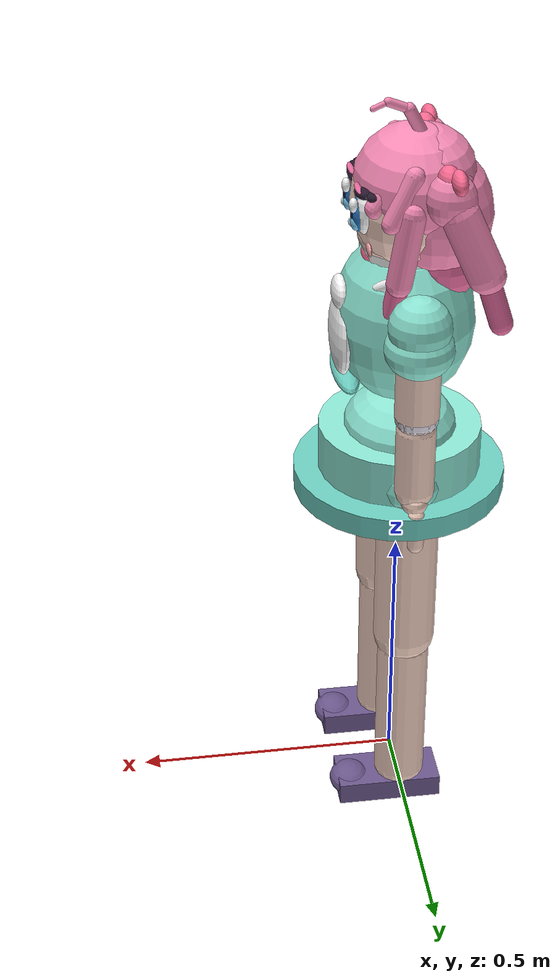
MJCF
<mujoco model="momo">
  <compiler angle="radian" autolimits="true"/>

  <default>
    <default class="momo">
      <geom type="capsule" condim="3" friction="0.9 0.05 0.01" density="800" group="1"/>
      <joint type="hinge" damping="2" armature="0.02" limited="true"/>
      <position kp="120" dampratio="1" ctrllimited="true"/>

      <default class="m_leg">
        <joint damping="5" armature="0.05"/>
        <position kp="400" forcerange="-200 200"/>
      </default>
      <default class="m_arm">
        <joint damping="2" armature="0.02"/>
        <position kp="500" dampratio="1" forcerange="-120 120"/>
      </default>
      <default class="m_finger">
        <!--
          Fingers are soft and grippy. condim=4 plus high friction is what lets a pinch hold
          light objects at all; anything heavy is held by the weld, as with the office doors.
        -->
        <joint damping="0.3" armature="0.005"/>
        <geom material="skin" friction="2.2 0.1 0.01" condim="4"/>
        <position kp="30" forcerange="-25 25"/>
      </default>
      <default class="m_foot">
        <geom type="box" friction="1.5 0.1 0.01" condim="6" material="shoe"/>
      </default>
      <default class="deco">
        <geom contype="0" conaffinity="0" density="1" group="1"/>
      </default>
    </default>
  </default>

  <asset>
    <!--
      Skin is warmer and a shade deeper than it looks it should be on paper. At 0.99/0.91/0.88
      the strong key light blew it out to flat white and the face lost all its modelling.
    -->
    <material name="skin"      rgba="0.98 0.84 0.78 1" specular="0.18" shininess="0.25"/>
    <material name="hair"      rgba="0.98 0.55 0.72 1" specular="0.45" shininess="0.55"/>
    <material name="hair_dark" rgba="0.90 0.42 0.62 1" specular="0.45" shininess="0.55"/>
    <material name="dress"     rgba="0.55 0.90 0.83 1" specular="0.30" shininess="0.40"/>
    <material name="dress_alt" rgba="0.42 0.80 0.75 1" specular="0.30"/>
    <material name="apron"     rgba="0.99 0.99 0.99 1" specular="0.20"/>
    <material name="eye_white" rgba="0.99 0.99 0.99 1" specular="0.60" shininess="0.80"/>
    <!--
      The iris is layered, which is how anime eyes are drawn: a deep saturated body with a
      brighter ring low down, so the eye looks translucent and lit from below rather than flat.
    -->
    <material name="eye_iris"  rgba="0.16 0.48 0.80 1" specular="0.80" shininess="0.90"/>
    <material name="eye_glow"  rgba="0.48 0.82 0.97 1" specular="0.85" shininess="0.95"/>
    <material name="eye_pupil" rgba="0.07 0.10 0.20 1" specular="0.70" shininess="0.85"/>
    <!-- Lashes are near-black with a warm cast, never pure black, which reads as harsh. -->
    <material name="lash_mat"  rgba="0.16 0.10 0.18 1" specular="0.35" shininess="0.40"/>
    <material name="blush"     rgba="0.99 0.68 0.70 1" specular="0.15"/>
    <material name="mouth"     rgba="0.90 0.45 0.50 1" specular="0.30"/>
    <material name="joint_mat" rgba="0.88 0.86 0.92 1" specular="0.40" shininess="0.50"/>
    <material name="shoe"      rgba="0.42 0.34 0.55 1" specular="0.35"/>
    <material name="ribbon"    rgba="0.99 0.42 0.58 1" specular="0.50" shininess="0.60"/>
  </asset>

  <worldbody>
    <!--
      Pelvis is the floating base, as on H1. 0.7496 puts the soles on z=0 with the "stand"
      keyframe's bent knees; it is solved from the leg chain, not guessed.
    -->
    <body name="pelvis" pos="0 0 0.7659" childclass="momo">
      <freejoint name="root"/>
      <inertial pos="0 0 0" mass="5.0" diaginertia="0.05 0.045 0.035"/>
      <geom name="pelvis_g" type="ellipsoid" size="0.105 0.115 0.078" material="dress"/>

      <geom name="skirt_g" type="cylinder" size="0.150 0.062" pos="0 0 -0.052"
            material="dress" class="deco"/>
      <geom name="skirt_hem" type="cylinder" size="0.196 0.022" pos="0 0 -0.100"
            material="dress_alt" class="deco"/>

      <!-- ================= TORSO ================= -->
      <body name="torso" pos="0 0 0.100">
        <joint name="waist_yaw" axis="0 0 1" range="-1.0 1.0"/>
        <inertial pos="0 0 0.12" mass="9.0" diaginertia="0.14 0.12 0.07"/>
        <geom name="torso_g" type="ellipsoid" size="0.128 0.135 0.158" pos="0 0 0.132"
              material="dress"/>
        <!-- Apron/pinafore front panel, and a collar. Both decoration. -->
        <!--
          The pinafore front, on the robot's FRONT (+x) like the face. It used to sit on -y,
          matching the old head, so the robot wore its apron on one hip.
        -->
        <geom name="apron_g" type="ellipsoid" size="0.020 0.070 0.076" pos="0.112 0 0.104"
              material="apron" class="deco"/>
        <geom name="apron_top" type="ellipsoid" size="0.016 0.040 0.030" pos="0.114 0 0.186"
              material="apron" class="deco"/>
        <!-- shoulder straps, so the pinafore is held up by something -->
        <geom name="strap_l" type="capsule" fromto="0.096 0.036 0.196 0.036 0.092 0.246"
              size="0.011" material="apron" class="deco"/>
        <geom name="strap_r" type="capsule" fromto="0.096 -0.036 0.196 0.036 -0.092 0.246"
              size="0.011" material="apron" class="deco"/>
        <!-- a waist frill where the pinafore meets the skirt -->
        <geom name="apron_hem" type="ellipsoid" size="0.024 0.084 0.016" pos="0.104 0 0.028"
              material="dress_alt" class="deco"/>
        <!--
          Collar sits at the very top of the torso, BELOW the neck stub. Any higher and it
          intersects the chin, which from the front looks like the robot is wearing a bowl.
        -->
        <geom name="collar_g" type="cylinder" size="0.076 0.014" pos="0 0 0.262"
              material="apron" class="deco"/>
        <!-- Collar ribbon, at the throat on the front (+x). -->
        <geom name="ribbon_c" type="ellipsoid" size="0.020 0.038 0.024" pos="0.058 0 0.258"
              material="ribbon" class="deco"/>

        <!-- ================= HEAD ================= -->
        <body name="head" pos="0 0 0.340">
          <inertial pos="0 0 0.06" mass="1.4" diaginertia="0.008 0.008 0.007"/>
          <joint name="neck_yaw" type="hinge" axis="0 0 1" pos="0 0 -0.052"
                 range="-1.75 1.75" damping="1.5" stiffness="0" armature="0.005"/>
          <joint name="neck_pitch" type="hinge" axis="0 1 0" pos="0 0 -0.052"
                 range="-0.35 1.05" damping="1.5" stiffness="0" armature="0.005"/>
          <geom name="neck_g" type="cylinder" size="0.028 0.028" pos="0 0 -0.052"
                material="skin"/>

          <geom name="head_g" type="ellipsoid" size="0.100 0.112 0.120" pos="0 0 0.018"
                material="skin"/>
          <geom name="jaw_g" type="ellipsoid" size="0.072 0.078 0.046" pos="0.014 0 -0.044"
                material="skin" class="deco"/>
          <geom name="chin_g" type="ellipsoid" size="0.034 0.036 0.026" pos="0.024 0 -0.080"
                material="skin" class="deco"/>

          <!-- sclera: tall ovals, angled slightly so the outer corner sits higher -->
          <geom name="eye_l_w" type="ellipsoid" size="0.019 0.030 0.040" pos="0.080 0.039 0.018"
                material="eye_white" class="deco"/>
          <geom name="eye_r_w" type="ellipsoid" size="0.019 0.030 0.040" pos="0.080 -0.039 0.018"
                material="eye_white" class="deco"/>
          <!-- iris: large, filling most of the sclera -->
          <geom name="eye_l_i" type="ellipsoid" size="0.013 0.023 0.031" pos="0.090 0.039 0.015"
                material="eye_iris" class="deco"/>
          <geom name="eye_r_i" type="ellipsoid" size="0.013 0.023 0.031" pos="0.090 -0.039 0.015"
                material="eye_iris" class="deco"/>
          <geom name="eye_l_g" type="ellipsoid" size="0.010 0.018 0.015" pos="0.095 0.039 0.001"
                material="eye_glow" class="deco"/>
          <geom name="eye_r_g" type="ellipsoid" size="0.010 0.018 0.015" pos="0.095 -0.039 0.001"
                material="eye_glow" class="deco"/>
          <!-- pupil -->
          <geom name="eye_l_p" type="ellipsoid" size="0.008 0.011 0.018" pos="0.097 0.039 0.016"
                material="eye_pupil" class="deco"/>
          <geom name="eye_r_p" type="ellipsoid" size="0.008 0.011 0.018" pos="0.097 -0.039 0.016"
                material="eye_pupil" class="deco"/>
          <!--
            Catchlights: one large high and outboard, one small low and inboard. Two of them,
            asymmetric, is the convention -- a single centred highlight looks like plastic.
          -->
          <geom name="eye_l_h1" type="ellipsoid" size="0.008 0.011 0.013" pos="0.101 0.047 0.035"
                material="eye_white" class="deco"/>
          <geom name="eye_r_h1" type="ellipsoid" size="0.008 0.011 0.013" pos="0.101 -0.031 0.035"
                material="eye_white" class="deco"/>
          <geom name="eye_l_h2" type="ellipsoid" size="0.006 0.007 0.008" pos="0.101 0.031 -0.003"
                material="eye_white" class="deco"/>
          <geom name="eye_r_h2" type="ellipsoid" size="0.006 0.007 0.008" pos="0.101 -0.047 -0.003"
                material="eye_white" class="deco"/>
          <geom name="lash_l" type="ellipsoid" size="0.018 0.032 0.011" pos="0.081 0.039 0.054"
                material="lash_mat" euler="0.20 0 0" class="deco"/>
          <geom name="lash_r" type="ellipsoid" size="0.018 0.032 0.011" pos="0.081 -0.039 0.054"
                material="lash_mat" euler="-0.20 0 0" class="deco"/>
          <!-- outer lash tips, angled up: the little flick at the corner of the eye -->
          <geom name="lash_l_tip" type="ellipsoid" size="0.012 0.014 0.008"
                pos="0.072 0.068 0.058" material="lash_mat" class="deco"/>
          <geom name="lash_r_tip" type="ellipsoid" size="0.012 0.014 0.008"
                pos="0.072 -0.068 0.058" material="lash_mat" class="deco"/>
          <geom name="brow_l" type="ellipsoid" size="0.006 0.023 0.004" pos="0.092 0.039 0.062"
                material="hair_dark" class="deco"/>
          <geom name="brow_r" type="ellipsoid" size="0.006 0.023 0.004" pos="0.092 -0.039 0.062"
                material="hair_dark" class="deco"/>
          <geom name="blush_l" type="ellipsoid" size="0.004 0.022 0.011" pos="0.074 0.052 -0.046"
                material="blush" class="deco"/>
          <geom name="blush_r" type="ellipsoid" size="0.004 0.022 0.011" pos="0.074 -0.052 -0.046"
                material="blush" class="deco"/>
          <geom name="mouth_g" type="ellipsoid" size="0.007 0.014 0.006" pos="0.064 0 -0.072"
                material="mouth" class="deco"/>

          <!-- crown: sits back and above the skull, capping it rather than swallowing it -->
          <geom name="hair_top1" type="ellipsoid" size="0.108 0.120 0.104" pos="-0.012 0 0.046"
                material="hair" class="deco"/>
          <geom name="hair_top2" type="ellipsoid" size="0.086 0.100 0.070" pos="-0.030 0 0.076"
                material="hair" class="deco"/>

          <geom name="fringe_1" type="capsule" fromto="0.028 0.020 0.108 0.078 0.028 0.046"
                size="0.018" material="hair" class="deco"/>
          <geom name="fringe_2" type="capsule" fromto="0.028 -0.020 0.108 0.078 -0.028 0.046"
                size="0.018" material="hair" class="deco"/>
          <geom name="fringe_3" type="capsule" fromto="0.020 0.058 0.106 0.068 0.070 0.038"
                size="0.018" material="hair" class="deco"/>
          <geom name="fringe_4" type="capsule" fromto="0.020 -0.058 0.106 0.068 -0.070 0.038"
                size="0.018" material="hair" class="deco"/>
          <geom name="fringe_5" type="capsule" fromto="0.006 0.092 0.102 0.046 0.104 0.024"
                size="0.017" material="hair" class="deco"/>
          <geom name="fringe_6" type="capsule" fromto="0.006 -0.092 0.102 0.046 -0.104 0.024"
                size="0.017" material="hair" class="deco"/>

          <geom name="lock_l1" type="capsule" fromto="0.010 0.106 0.040 0.030 0.104 -0.090"
                size="0.023" material="hair" class="deco"/>
          <geom name="lock_r1" type="capsule" fromto="0.010 -0.106 0.040 0.030 -0.104 -0.090"
                size="0.023" material="hair" class="deco"/>
          <geom name="lock_l2" type="capsule" fromto="0.030 0.102 -0.090 0.040 0.096 -0.150"
                size="0.019" material="hair_dark" class="deco"/>
          <geom name="lock_r2" type="capsule" fromto="0.030 -0.102 -0.090 0.040 -0.096 -0.150"
                size="0.019" material="hair_dark" class="deco"/>

          <!-- back of the head, so the silhouette is full from behind too -->
          <geom name="hair_back1" type="ellipsoid" size="0.098 0.118 0.112" pos="-0.052 0 -0.004"
                material="hair" class="deco"/>
          <geom name="hair_back2" type="ellipsoid" size="0.072 0.092 0.080" pos="-0.062 0 -0.090"
                material="hair_dark" class="deco"/>

          <geom name="tail_l1" type="ellipsoid" size="0.044 0.042 0.048" pos="-0.052 0.112 0.066"
                material="hair" class="deco"/>
          <geom name="tail_l2" type="capsule" fromto="-0.064 0.124 0.046 -0.112 0.142 -0.062"
                size="0.034" material="hair" class="deco"/>
          <geom name="tail_l3" type="capsule" fromto="-0.112 0.142 -0.062 -0.140 0.150 -0.152"
                size="0.021" material="hair_dark" class="deco"/>
          <geom name="tail_r1" type="ellipsoid" size="0.044 0.042 0.048" pos="-0.052 -0.112 0.066"
                material="hair" class="deco"/>
          <geom name="tail_r2" type="capsule" fromto="-0.064 -0.124 0.046 -0.112 -0.142 -0.062"
                size="0.034" material="hair" class="deco"/>
          <geom name="tail_r3" type="capsule" fromto="-0.112 -0.142 -0.062 -0.140 -0.150 -0.152"
                size="0.021" material="hair_dark" class="deco"/>

          <geom name="ahoge_1" type="capsule" fromto="-0.020 0.006 0.140 0.004 0.010 0.186"
                size="0.011" material="hair" class="deco"/>
          <geom name="ahoge_2" type="capsule" fromto="0.004 0.010 0.186 0.040 0.014 0.202"
                size="0.008" material="hair" class="deco"/>
          <geom name="ahoge_3" type="capsule" fromto="0.040 0.014 0.202 0.066 0.016 0.192"
                size="0.005" material="hair" class="deco"/>

          <!-- ribbons tying the twintails -->
          <geom name="ribbon_l1" type="ellipsoid" size="0.020 0.028 0.026" pos="-0.048 0.106 0.098"
                material="ribbon" class="deco"/>
          <geom name="ribbon_l2" type="ellipsoid" size="0.014 0.030 0.020" pos="-0.060 0.132 0.106"
                material="ribbon" class="deco"/>
          <geom name="ribbon_r1" type="ellipsoid" size="0.020 0.028 0.026" pos="-0.048 -0.106 0.098"
                material="ribbon" class="deco"/>
          <geom name="ribbon_r2" type="ellipsoid" size="0.014 0.030 0.020" pos="-0.060 -0.132 0.106"
                material="ribbon" class="deco"/>

          <camera name="head_cam" pos="0.105 0 0.000" xyaxes="0 -1 0 0 0 1" fovy="75"/>
          <site name="head_cam_site" pos="0.105 0 0.000" size="0.006" rgba="1 0 0 0"/>
          <camera name="look_left" pos="0.070 0.050 0.000" xyaxes="0.866 -0.5 0 0 0 1" fovy="90"/>
          <camera name="look_right" pos="0.070 -0.050 0.000" xyaxes="-0.866 -0.5 0 0 0 1" fovy="90"/>
        </body>

        <body name="shoulder_r" pos="0 -0.150 0.190">
          <joint name="sh_pitch_r" axis="0 1 0" range="-3.1 1.6" class="m_arm"/>
          <joint name="sh_roll_r" axis="1 0 0" range="-1.7 0.35" class="m_arm"/>
          <joint name="sh_yaw_r" axis="0 0 1" range="-1.6 1.6" class="m_arm"/>
          <inertial pos="0 0 -0.09" mass="1.1" diaginertia="0.008 0.008 0.003"/>
          <geom name="sh_cap_r" type="sphere" size="0.056" material="dress"/>
          <!-- puff sleeve -->
          <geom name="sleeve_r" type="ellipsoid" size="0.062 0.062 0.052" pos="0 0 -0.042"
                material="dress" class="deco"/>
          <geom name="uarm_r" type="capsule" fromto="0 0 -0.050 0 0 -0.175" size="0.040"
                material="skin"/>

          <body name="forearm_r" pos="0 0 -0.175">
            <joint name="elbow_r" axis="0 1 0" range="-2.4 0.0" class="m_arm"/>
            <inertial pos="0 0 -0.08" mass="0.7" diaginertia="0.004 0.004 0.0015"/>
            <geom name="elb_cap_r" type="sphere" size="0.040" material="joint_mat"/>
            <geom name="farm_r" type="capsule" fromto="0 0 -0.028 0 0 -0.155" size="0.036"
                  material="skin"/>

            <!-- Hand: a rounded palm plus two soft fingers, coupled by a tendon. -->
            <body name="palm_r" pos="0 0 -0.175">
              <inertial pos="0 0 -0.02" mass="0.20" diaginertia="0.0003 0.0003 0.0002"/>
              <geom name="palm_r_g" type="ellipsoid" size="0.026 0.040 0.028" material="skin"/>
              <!-- invisible: code uses this site, but a green dot on the hand is not wanted -->
              <site name="grip_r" pos="0 0 -0.058" size="0.010" rgba="0 1 0 0"/>
              <body name="finger_r1" pos="0 -0.030 -0.020">
                <joint name="grip_r1" axis="1 0 0" range="0 0.9" class="m_finger"/>
                <geom name="fing_r1" type="capsule" fromto="0 0 0 0 0 -0.062" size="0.015"
                      class="m_finger"/>
              </body>
              <body name="finger_r2" pos="0 0.030 -0.020">
                <joint name="grip_r2" axis="-1 0 0" range="0 0.9" class="m_finger"/>
                <geom name="fing_r2" type="capsule" fromto="0 0 0 0 0 -0.062" size="0.015"
                      class="m_finger"/>
              </body>
            </body>
          </body>
        </body>

        <body name="shoulder_l" pos="0 0.150 0.190">
          <joint name="sh_pitch_l" axis="0 1 0" range="-3.1 1.6" class="m_arm"/>
          <joint name="sh_roll_l" axis="1 0 0" range="-0.35 1.7" class="m_arm"/>
          <joint name="sh_yaw_l" axis="0 0 1" range="-1.6 1.6" class="m_arm"/>
          <inertial pos="0 0 -0.09" mass="1.1" diaginertia="0.008 0.008 0.003"/>
          <geom name="sh_cap_l" type="sphere" size="0.056" material="dress"/>
          <geom name="sleeve_l" type="ellipsoid" size="0.062 0.062 0.052" pos="0 0 -0.042"
                material="dress" class="deco"/>
          <geom name="uarm_l" type="capsule" fromto="0 0 -0.050 0 0 -0.175" size="0.040"
                material="skin"/>

          <body name="forearm_l" pos="0 0 -0.175">
            <joint name="elbow_l" axis="0 1 0" range="-2.4 0.0" class="m_arm"/>
            <inertial pos="0 0 -0.08" mass="0.7" diaginertia="0.004 0.004 0.0015"/>
            <geom name="elb_cap_l" type="sphere" size="0.040" material="joint_mat"/>
            <geom name="farm_l" type="capsule" fromto="0 0 -0.028 0 0 -0.155" size="0.036"
                  material="skin"/>

            <body name="palm_l" pos="0 0 -0.175">
              <inertial pos="0 0 -0.02" mass="0.20" diaginertia="0.0003 0.0003 0.0002"/>
              <geom name="palm_l_g" type="ellipsoid" size="0.026 0.040 0.028" material="skin"/>
              <!-- invisible: code uses this site, but a green dot on the hand is not wanted -->
              <site name="grip_l" pos="0 0 -0.058" size="0.010" rgba="0 1 0 0"/>
              <body name="finger_l1" pos="0 -0.030 -0.020">
                <joint name="grip_l1" axis="1 0 0" range="0 0.9" class="m_finger"/>
                <geom name="fing_l1" type="capsule" fromto="0 0 0 0 0 -0.062" size="0.015"
                      class="m_finger"/>
              </body>
              <body name="finger_l2" pos="0 0.030 -0.020">
                <joint name="grip_l2" axis="-1 0 0" range="0 0.9" class="m_finger"/>
                <geom name="fing_l2" type="capsule" fromto="0 0 0 0 0 -0.062" size="0.015"
                      class="m_finger"/>
              </body>
            </body>
          </body>
        </body>
      </body>

      <body name="hip_r" pos="0 -0.105 -0.052">
        <joint name="hip_yaw_r" axis="0 0 1" range="-0.7 0.7" class="m_leg"/>
        <joint name="hip_roll_r" axis="1 0 0" range="-0.5 0.5" class="m_leg"/>
        <joint name="hip_pitch_r" axis="0 1 0" range="-1.9 1.0" class="m_leg"/>
        <inertial pos="0 0 -0.12" mass="3.2" diaginertia="0.022 0.022 0.006"/>
        <geom name="hip_cap_r" type="sphere" size="0.060" material="dress"/>
        <geom name="thigh_r" type="capsule" fromto="0 0 -0.045 0 0 -0.345" size="0.058"
              material="skin"/>

        <body name="shin_r" pos="0 0 -0.345">
          <joint name="knee_r" axis="0 1 0" range="0 2.2" class="m_leg"/>
          <inertial pos="0 0 -0.12" mass="2.2" diaginertia="0.015 0.015 0.003"/>
          <geom name="knee_cap_r" type="sphere" size="0.050" material="joint_mat"/>
          <geom name="shin_r_g" type="capsule" fromto="0 0 -0.032 0 0 -0.335" size="0.049"
                material="skin"/>

          <body name="foot_r" pos="0 0 -0.335">
            <joint name="ank_pitch_r" axis="0 1 0" range="-0.9 0.6" class="m_leg"/>
            <joint name="ank_roll_r" axis="1 0 0" range="-0.4 0.4" class="m_leg"/>
            <inertial pos="0.02 0 -0.03" mass="0.8" diaginertia="0.003 0.004 0.002"/>
            <geom name="foot_r_g" size="0.100 0.046 0.0225" pos="0.024 0 -0.0325" class="m_foot"/>
            <!-- rounded toe cap, so the shoe is not a bare rectangle -->
            <geom name="toe_r" type="ellipsoid" size="0.040 0.045 0.028" pos="0.098 0 -0.028"
                  material="shoe" class="deco"/>
          </body>
        </body>
      </body>

      <body name="hip_l" pos="0 0.105 -0.052">
        <joint name="hip_yaw_l" axis="0 0 1" range="-0.7 0.7" class="m_leg"/>
        <joint name="hip_roll_l" axis="1 0 0" range="-0.5 0.5" class="m_leg"/>
        <joint name="hip_pitch_l" axis="0 1 0" range="-1.9 1.0" class="m_leg"/>
        <inertial pos="0 0 -0.12" mass="3.2" diaginertia="0.022 0.022 0.006"/>
        <geom name="hip_cap_l" type="sphere" size="0.060" material="dress"/>
        <geom name="thigh_l" type="capsule" fromto="0 0 -0.045 0 0 -0.345" size="0.058"
              material="skin"/>

        <body name="shin_l" pos="0 0 -0.345">
          <joint name="knee_l" axis="0 1 0" range="0 2.2" class="m_leg"/>
          <inertial pos="0 0 -0.12" mass="2.2" diaginertia="0.015 0.015 0.003"/>
          <geom name="knee_cap_l" type="sphere" size="0.050" material="joint_mat"/>
          <geom name="shin_l_g" type="capsule" fromto="0 0 -0.032 0 0 -0.335" size="0.049"
                material="skin"/>

          <body name="foot_l" pos="0 0 -0.335">
            <joint name="ank_pitch_l" axis="0 1 0" range="-0.9 0.6" class="m_leg"/>
            <joint name="ank_roll_l" axis="1 0 0" range="-0.4 0.4" class="m_leg"/>
            <inertial pos="0.02 0 -0.03" mass="0.8" diaginertia="0.003 0.004 0.002"/>
            <geom name="foot_l_g" size="0.100 0.046 0.0225" pos="0.024 0 -0.0325" class="m_foot"/>
            <geom name="toe_l" type="ellipsoid" size="0.040 0.045 0.028" pos="0.098 0 -0.028"
                  material="shoe" class="deco"/>
          </body>
        </body>
      </body>
    </body>
  </worldbody>

  <!-- One actuator per hand; the two fingers follow each other through this tendon. -->
  <tendon>
    <fixed name="grip_r_t">
      <joint joint="grip_r1" coef="1"/>
      <joint joint="grip_r2" coef="-1"/>
    </fixed>
    <fixed name="grip_l_t">
      <joint joint="grip_l1" coef="1"/>
      <joint joint="grip_l2" coef="-1"/>
    </fixed>
  </tendon>
  <equality>
    <tendon tendon1="grip_r_t"/>
    <tendon tendon1="grip_l_t"/>
  </equality>

  <contact>
    <exclude body1="pelvis" body2="torso"/>
    <exclude body1="pelvis" body2="hip_r"/>
    <exclude body1="pelvis" body2="hip_l"/>
    <exclude body1="torso" body2="shoulder_r"/>
    <exclude body1="torso" body2="shoulder_l"/>
    <exclude body1="torso" body2="head"/>
    <exclude body1="palm_r" body2="finger_r1"/>
    <exclude body1="palm_r" body2="finger_r2"/>
    <exclude body1="palm_l" body2="finger_l1"/>
    <exclude body1="palm_l" body2="finger_l2"/>
  </contact>

  <actuator>
    <!-- neck (2) -->
    <position name="neck_yaw" joint="neck_yaw" ctrlrange="-1.75 1.75" kp="25" kv="2.5"/>
    <!-- Pitch carries the head's weight against gravity, so it needs more than yaw does. -->
    <position name="neck_pitch" joint="neck_pitch" ctrlrange="-0.35 1.05" kp="35" kv="3.0"/>

    <!-- legs (12) -->
    <position name="hip_yaw_r" joint="hip_yaw_r" ctrlrange="-0.7 0.7" class="m_leg"/>
    <position name="hip_roll_r" joint="hip_roll_r" ctrlrange="-0.5 0.5" class="m_leg"/>
    <position name="hip_pitch_r" joint="hip_pitch_r" ctrlrange="-1.9 1.0" class="m_leg"/>
    <position name="knee_r" joint="knee_r" ctrlrange="0 2.2" class="m_leg"/>
    <position name="ank_pitch_r" joint="ank_pitch_r" ctrlrange="-0.9 0.6" class="m_leg"/>
    <position name="ank_roll_r" joint="ank_roll_r" ctrlrange="-0.4 0.4" class="m_leg"/>
    <position name="hip_yaw_l" joint="hip_yaw_l" ctrlrange="-0.7 0.7" class="m_leg"/>
    <position name="hip_roll_l" joint="hip_roll_l" ctrlrange="-0.5 0.5" class="m_leg"/>
    <position name="hip_pitch_l" joint="hip_pitch_l" ctrlrange="-1.9 1.0" class="m_leg"/>
    <position name="knee_l" joint="knee_l" ctrlrange="0 2.2" class="m_leg"/>
    <position name="ank_pitch_l" joint="ank_pitch_l" ctrlrange="-0.9 0.6" class="m_leg"/>
    <position name="ank_roll_l" joint="ank_roll_l" ctrlrange="-0.4 0.4" class="m_leg"/>
    <!-- waist (1) -->
    <position name="waist_yaw" joint="waist_yaw" ctrlrange="-1.0 1.0"/>
    <!-- arms (8) -->
    <position name="sh_pitch_r" joint="sh_pitch_r" ctrlrange="-3.1 1.6" class="m_arm"/>
    <position name="sh_roll_r" joint="sh_roll_r" ctrlrange="-1.7 0.35" class="m_arm"/>
    <position name="sh_yaw_r" joint="sh_yaw_r" ctrlrange="-1.6 1.6" class="m_arm"/>
    <position name="elbow_r" joint="elbow_r" ctrlrange="-2.4 0.0" class="m_arm"/>
    <position name="sh_pitch_l" joint="sh_pitch_l" ctrlrange="-3.1 1.6" class="m_arm"/>
    <position name="sh_roll_l" joint="sh_roll_l" ctrlrange="-0.35 1.7" class="m_arm"/>
    <position name="sh_yaw_l" joint="sh_yaw_l" ctrlrange="-1.6 1.6" class="m_arm"/>
    <position name="elbow_l" joint="elbow_l" ctrlrange="-2.4 0.0" class="m_arm"/>
    <!-- grippers (2) -->
    <position name="grip_r" joint="grip_r1" ctrlrange="0 0.9" class="m_finger"/>
    <position name="grip_l" joint="grip_l1" ctrlrange="0 0.9" class="m_finger"/>
  </actuator>

  <keyframe>
    <key name="stand"
         qpos="0 0 0.7659  1 0 0 0
               0
               0 0
               -0.05 -0.20 0 -0.22   0 0
               -0.05  0.20 0 -0.22   0 0
               0 0 -0.25 0.5 -0.25 0
               0 0 -0.25 0.5 -0.25 0"/>
  </keyframe>
</mujoco>
